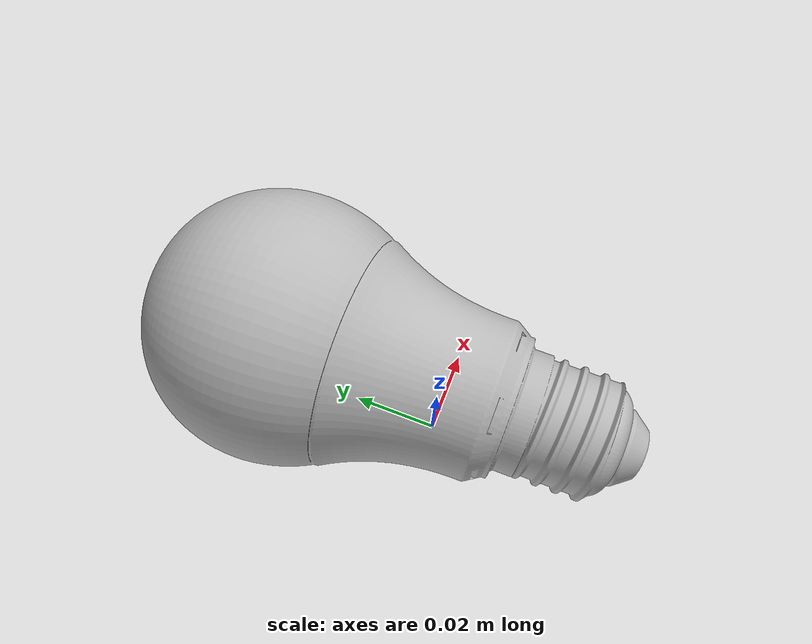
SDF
<?xml version='1.0'?>

<sdf version='1.4'>
	<model name="livarno_bulb">
			<link name="base">
			<pose>0 0 0 0 0 0</pose>
				<visual name="visual">
					<geometry>
						<mesh>
							<uri>model://livarno_bulb/meshes/livarno.stl</uri>
						</mesh>
					</geometry>
				</visual>

				<collision name="collision">
					<geometry>
						<mesh>
							<uri>model://livarno_bulb/meshes/livarno.stl</uri>
						</mesh>
					</geometry>
				</collision>

				<inertial>
					<mass>0.1</mass>
					<pose>0 0 0 0 0 0</pose>
				</inertial>

      		</link>
	</model>
</sdf>
